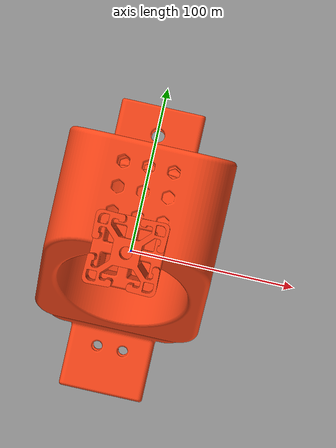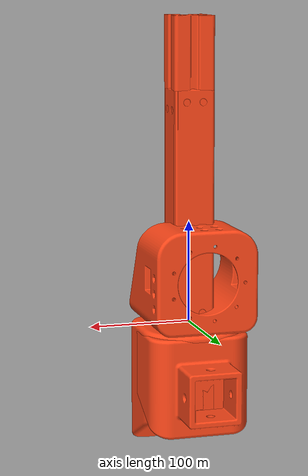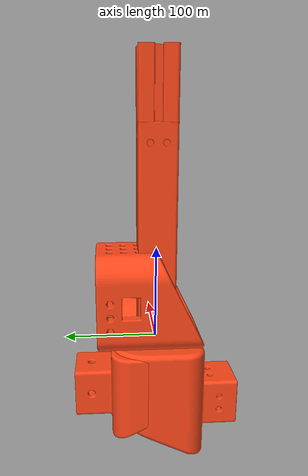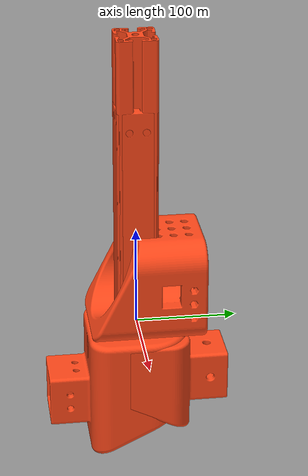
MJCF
<mujoco model="dex1_1">
  <default>
    <default class="robot">
      <default class="motor">
        <joint />
        <motor />
      </default>
      <default class="visual">
        <geom material="visualgeom" contype="0" conaffinity="0" group="2" />
      </default>
      <default class="collision">
        <geom material="collision_material" condim="3" contype="0" conaffinity="1" priority="1" group="1" solref="0.005 1" solimp="0.99 0.999 1e-05" friction="1 0.01 0.01" />
      </default>
    </default>
  </default>

  <compiler angle="radian" meshdir="meshes"/>

  <asset>
    <material name="_" rgba="0.89804 0.91765 0.92941 1" />
    <material name="default_material" rgba="0.7 0.7 0.7 1" />
    <material name="collision_material" rgba="1.0 0.28 0.1 0.9" />
    <mesh name="base_link.STL" file="base_link.STL" />
    <mesh name="Link1_1.STL" file="Link1_1.STL" />
    <mesh name="Link1_2.STL" file="Link1_2.STL" />
    <mesh name="Link1_3.STL" file="Link1_3.STL" />
    <mesh name="Link2_1.STL" file="Link2_1.STL" />
    <mesh name="Link2_2.STL" file="Link2_2.STL" />
  </asset>

  <worldbody>
    <body name="base_link" pos="0.00000000 0.00000000 0.01520000" quat="1 0 0 0" childclass="robot">
      <freejoint name="floating_base" />
      <geom name="base_link_collision" pos="0 0 0" quat="1.0 0.0 0.0 0.0" type="mesh" mesh="base_link.STL" class="collision" />
      <geom name="base_link_visual" pos="0 0 0" quat="1.0 0.0 0.0 0.0" material="_" type="mesh" mesh="base_link.STL" class="visual" />
      <body name="Link1_1" pos="0.04055 0.0593 0.0152" quat="1.0 0.0 0.0 0.0">
        <joint name="Joint1_1" type="slide" ref="0.0" class="motor" range="-0.02 0.0245" axis="-1 0 0" />
        <inertial pos="-0.041607 0.0039411 -0.00047344" quat="1.0 0.0 0.0 0.0" mass="0.0084398" diaginertia="1.0466e-07 3.5113e-06 3.523e-06" />
        <geom name="Link1_1_collision" pos="0 0 0" quat="1.0 0.0 0.0 0.0" type="mesh" mesh="Link1_1.STL" class="collision" />
        <geom name="Link1_1_visual" pos="0 0 0" quat="1.0 0.0 0.0 0.0" material="_" type="mesh" mesh="Link1_1.STL" class="visual" />
        <body name="Link1_2" pos="-0.013 0.013 0" quat="1.0 0.0 0.0 0.0">
          <inertial pos="0.0046767 0.026417 -0.014407" quat="1.0 0.0 0.0 0.0" mass="0.028354" diaginertia="1.3423e-05 2.249e-06 1.1892e-05" />
          <geom name="Link1_2_collision" pos="0 0 0" quat="1.0 0.0 0.0 0.0" type="mesh" mesh="Link1_2.STL" class="collision" />
          <geom name="Link1_2_visual" pos="0 0 0" quat="1.0 0.0 0.0 0.0" material="_" type="mesh" mesh="Link1_2.STL" class="visual" />
          <body name="Link1_3" pos="-0.0025165 0.025043 -0.001" quat="1.0 0.0 0.0 0.0">
            <inertial pos="0.0018267 0.017456 -0.0142" quat="1.0 0.0 0.0 0.0" mass="0.004583" diaginertia="9.6165e-07 2.5948e-07 7.1226e-07" />
            <geom name="Link1_3_collision" pos="0 0 0" quat="1.0 0.0 0.0 0.0" type="mesh" mesh="Link1_3.STL" class="collision" />
            <geom name="Link1_3_visual" pos="0 0 0" quat="1.0 0.0 0.0 0.0" material="_" type="mesh" mesh="Link1_3.STL" class="visual" />
          </body>
        </body>
      </body>
      <body name="Link2_1" pos="-0.04055 0.0593 -0.0152" quat="1.0 0.0 0.0 0.0">
        <joint name="Joint2_1" type="slide" ref="0.0" class="motor" range="-0.02 0.0245" axis="1 0 0" />
        <inertial pos="0.041607 0.0039411 0.00047344" quat="1.0 0.0 0.0 0.0" mass="0.0084398" diaginertia="1.0466e-07 3.5113e-06 3.523e-06" />
        <geom name="Link2_1_collision" pos="0 0 0" quat="1.0 0.0 0.0 0.0" type="mesh" mesh="Link2_1.STL" class="collision" />
        <geom name="Link2_1_visual" pos="0 0 0" quat="1.0 0.0 0.0 0.0" material="_" type="mesh" mesh="Link2_1.STL" class="visual" />
        <body name="Link2_2" pos="0.013 0.013 0" quat="1.0 0.0 0.0 0.0">
          <inertial pos="-0.0046767 0.026417 0.014407" quat="1.0 0.0 0.0 0.0" mass="0.028354" diaginertia="1.3423e-05 2.249e-06 1.1892e-05" />
          <geom name="Link2_2_collision" pos="0 0 0" quat="1.0 0.0 0.0 0.0" type="mesh" mesh="Link2_2.STL" class="collision" />
          <geom name="Link2_2_visual" pos="0 0 0" quat="1.0 0.0 0.0 0.0" material="_" type="mesh" mesh="Link2_2.STL" class="visual" />
        </body>
      </body>
      <site name="base_link_site" pos="0 0 0" quat="1 0 0 0" />
      <camera name="front_camera" mode="track" fovy="90.0" quat="4.329780281177467e-17 4.329780281177466e-17 0.7071067811865475 0.7071067811865476" pos="0.0 2.0 0.5" />
      <camera name="side_camera" mode="track" fovy="90.0" quat="-0.5 -0.4999999999999999 0.5 0.5000000000000001" pos="-2.0 0.0 0.5" />
    </body>
  </worldbody>

  <actuator>
    <motor name="Joint1_1_ctrl" joint="Joint1_1" class="motor" />
    <motor name="Joint2_1_ctrl" joint="Joint2_1" class="motor" />
  </actuator>

  <contact>
    <exclude body1="base_link" body2="Link1_1" />
    <exclude body1="Link1_1" body2="Link1_2" />
    <exclude body1="Link1_2" body2="Link1_3" />
    <exclude body1="base_link" body2="Link2_1" />
    <exclude body1="Link2_1" body2="Link2_2" />
  </contact>

  <sensor>
    <framepos name="base_link_site_pos" objtype="site" objname="base_link_site" />
    <framequat name="base_link_site_quat" objtype="site" objname="base_link_site" />
    <framelinvel name="base_link_site_linvel" objtype="site" objname="base_link_site" />
    <frameangvel name="base_link_site_angvel" objtype="site" objname="base_link_site" />
    <velocimeter name="base_link_site_vel" site="base_link_site" />
  </sensor>
</mujoco>
